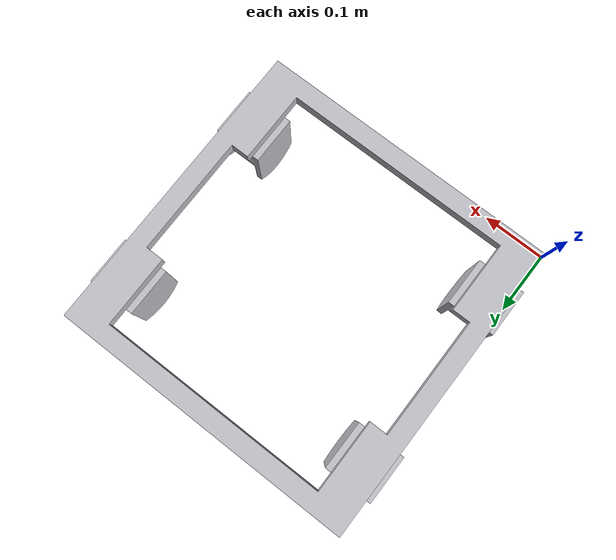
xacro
<?xml version="1.0" ?>
<robot name="(Unsaved)" xmlns:xacro="http://www.ros.org/wiki/xacro">

<xacro:include filename="$(find (Unsaved)_description)/urdf/materials.xacro" />
<xacro:include filename="$(find (Unsaved)_description)/urdf/(Unsaved).trans" />
<xacro:include filename="$(find (Unsaved)_description)/urdf/(Unsaved).gazebo" />
<link name="base_link">
  <inertial>
    <origin xyz="0.25000000000019557 0.24999999999999992 0.008002902975586378" rpy="0 0 0"/>
    <mass value="12.348675116534034"/>
    <inertia ixx="0.416714" iyy="0.483241" izz="0.898244" ixy="0.0" iyz="-0.0" ixz="0.0"/>
  </inertial>
  <visual>
    <origin xyz="0 0 0" rpy="0 0 0"/>
    <geometry>
      <mesh filename="package://(Unsaved)_description/meshes/base_link.stl" scale="0.001 0.001 0.001"/>
    </geometry>
    <material name="silver"/>
  </visual>
  <collision>
    <origin xyz="0 0 0" rpy="0 0 0"/>
    <geometry>
      <mesh filename="package://(Unsaved)_description/meshes/base_link.stl" scale="0.001 0.001 0.001"/>
    </geometry>
  </collision>
</link>

<link name="J1_1_1">
  <inertial>
    <origin xyz="7.810161864463261e-09 3.176972616925067e-08 -0.057975825376308965" rpy="0 0 0"/>
    <mass value="3.07492402154736"/>
    <inertia ixx="0.004522" iyy="0.00539" izz="0.003488" ixy="-0.0" iyz="0.0" ixz="0.0"/>
  </inertial>
  <visual>
    <origin xyz="-0.03 -0.1 -0.0" rpy="0 0 0"/>
    <geometry>
      <mesh filename="package://(Unsaved)_description/meshes/J1_1_1.stl" scale="0.001 0.001 0.001"/>
    </geometry>
    <material name="silver"/>
  </visual>
  <collision>
    <origin xyz="-0.03 -0.1 -0.0" rpy="0 0 0"/>
    <geometry>
      <mesh filename="package://(Unsaved)_description/meshes/J1_1_1.stl" scale="0.001 0.001 0.001"/>
    </geometry>
  </collision>
</link>

<link name="J2_1_1">
  <inertial>
    <origin xyz="7.810161864463261e-09 3.176903756729743e-08 -0.057975825376308965" rpy="0 0 0"/>
    <mass value="3.074924021547359"/>
    <inertia ixx="0.004522" iyy="0.00539" izz="0.003488" ixy="-0.0" iyz="0.0" ixz="0.0"/>
  </inertial>
  <visual>
    <origin xyz="-0.03 -0.4 -0.0" rpy="0 0 0"/>
    <geometry>
      <mesh filename="package://(Unsaved)_description/meshes/J2_1_1.stl" scale="0.001 0.001 0.001"/>
    </geometry>
    <material name="silver"/>
  </visual>
  <collision>
    <origin xyz="-0.03 -0.4 -0.0" rpy="0 0 0"/>
    <geometry>
      <mesh filename="package://(Unsaved)_description/meshes/J2_1_1.stl" scale="0.001 0.001 0.001"/>
    </geometry>
  </collision>
</link>

<link name="J3_1_1">
  <inertial>
    <origin xyz="7.809152047233425e-09 3.176972616925067e-08 -0.057975825376309006" rpy="0 0 0"/>
    <mass value="3.0749240215473637"/>
    <inertia ixx="0.004522" iyy="0.00539" izz="0.003488" ixy="-0.0" iyz="0.0" ixz="0.0"/>
  </inertial>
  <visual>
    <origin xyz="-0.47 -0.1 -0.0" rpy="0 0 0"/>
    <geometry>
      <mesh filename="package://(Unsaved)_description/meshes/J3_1_1.stl" scale="0.001 0.001 0.001"/>
    </geometry>
    <material name="silver"/>
  </visual>
  <collision>
    <origin xyz="-0.47 -0.1 -0.0" rpy="0 0 0"/>
    <geometry>
      <mesh filename="package://(Unsaved)_description/meshes/J3_1_1.stl" scale="0.001 0.001 0.001"/>
    </geometry>
  </collision>
</link>

<link name="J4_1_1">
  <inertial>
    <origin xyz="7.809151991722274e-09 3.176903756729743e-08 -0.057975825376308986" rpy="0 0 0"/>
    <mass value="3.074924021547362"/>
    <inertia ixx="0.004522" iyy="0.00539" izz="0.003488" ixy="-0.0" iyz="0.0" ixz="0.0"/>
  </inertial>
  <visual>
    <origin xyz="-0.47 -0.4 -0.0" rpy="0 0 0"/>
    <geometry>
      <mesh filename="package://(Unsaved)_description/meshes/J4_1_1.stl" scale="0.001 0.001 0.001"/>
    </geometry>
    <material name="silver"/>
  </visual>
  <collision>
    <origin xyz="-0.47 -0.4 -0.0" rpy="0 0 0"/>
    <geometry>
      <mesh filename="package://(Unsaved)_description/meshes/J4_1_1.stl" scale="0.001 0.001 0.001"/>
    </geometry>
  </collision>
</link>

<joint name="J1" type="continuous">
  <origin xyz="0.03 0.1 0.0" rpy="0 0 0"/>
  <parent link="base_link"/>
  <child link="J1_1_1"/>
  <axis xyz="0.0 0.0 -1.0"/>
</joint>

<joint name="J2" type="continuous">
  <origin xyz="0.03 0.4 0.0" rpy="0 0 0"/>
  <parent link="base_link"/>
  <child link="J2_1_1"/>
  <axis xyz="0.0 0.0 -1.0"/>
</joint>

<joint name="J3" type="continuous">
  <origin xyz="0.47 0.1 0.0" rpy="0 0 0"/>
  <parent link="base_link"/>
  <child link="J3_1_1"/>
  <axis xyz="0.0 0.0 -1.0"/>
</joint>

<joint name="J4" type="continuous">
  <origin xyz="0.47 0.4 0.0" rpy="0 0 0"/>
  <parent link="base_link"/>
  <child link="J4_1_1"/>
  <axis xyz="0.0 0.0 -1.0"/>
</joint>

</robot>

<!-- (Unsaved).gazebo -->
<robot name="(Unsaved)" xmlns:xacro="http://www.ros.org/wiki/xacro" >

<xacro:property name="body_color" value="Gazebo/Silver" />

<gazebo>
  <plugin name="control" filename="libgazebo_ros_control.so"/>
</gazebo>
<gazebo reference="base_link">
  <material>${body_color}</material>
  <mu1>0.2</mu1>
  <mu2>0.2</mu2>
  <selfCollide>true</selfCollide>
  <gravity>true</gravity>
</gazebo>

<gazebo reference="J1_1_1">
  <material>${body_color}</material>
  <mu1>0.2</mu1>
  <mu2>0.2</mu2>
  <selfCollide>true</selfCollide>
</gazebo>

<gazebo reference="J2_1_1">
  <material>${body_color}</material>
  <mu1>0.2</mu1>
  <mu2>0.2</mu2>
  <selfCollide>true</selfCollide>
</gazebo>

<gazebo reference="J3_1_1">
  <material>${body_color}</material>
  <mu1>0.2</mu1>
  <mu2>0.2</mu2>
  <selfCollide>true</selfCollide>
</gazebo>

<gazebo reference="J4_1_1">
  <material>${body_color}</material>
  <mu1>0.2</mu1>
  <mu2>0.2</mu2>
  <selfCollide>true</selfCollide>
</gazebo>

</robot>
